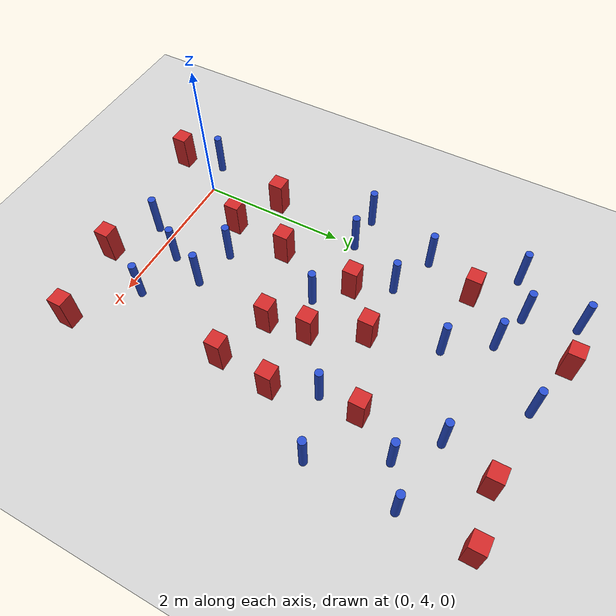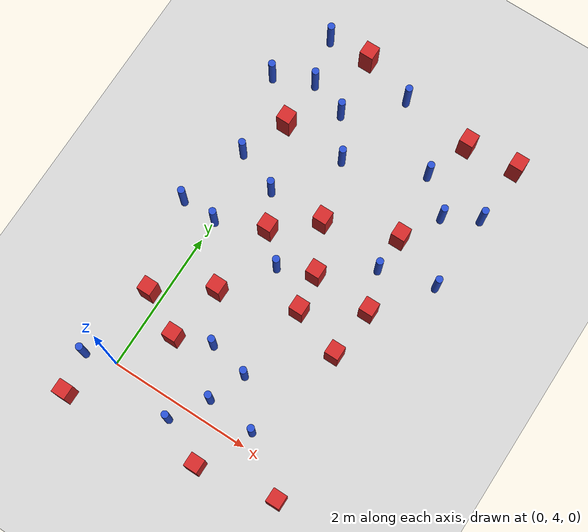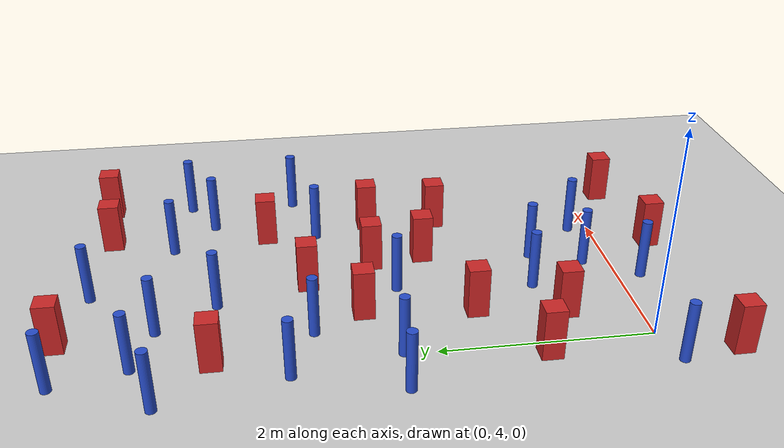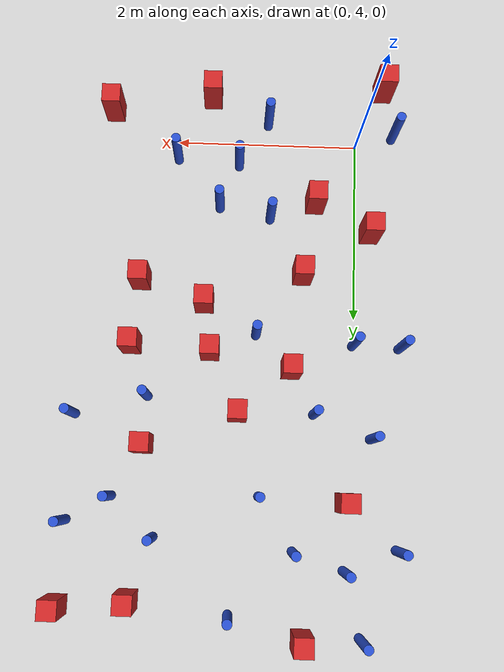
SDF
<sdf version="1.6">
 <world name="default">
  <model name="ground_plane">
   <static>1</static>
   <link name="link">
    <collision name="collision">
     <geometry><plane><normal>0 0 1</normal><size>100 100</size></plane></geometry>
     <surface><friction><ode><mu>100</mu><mu2>50</mu2></ode></friction></surface>
    </collision>
    <visual name="visual">
     <cast_shadows>0</cast_shadows>
     <geometry><plane><normal>0 0 1</normal><size>100 100</size></plane></geometry>
     <material>
      <ambient>1.0 1.0 1.0 1.0</ambient>
      <diffuse>0.8 0.8 0.8 1.0</diffuse>
      <specular>0.01 0.01 0.01 1.000000</specular>
     </material>
    </visual>
   </link>
  </model>
  <model name="pole_obstacle2">
   <static>true</static>
   <pose>1.06586460328 6.21019038955 7.38925637345e-09 -8.47170692799e-08 1.24976765033e-08 -1.74513093018e-07</pose>
   <link name="link">
    <pose>0 0 0.3 0 -0 0</pose>
    <inertial>
     <mass>1</mass>
     <inertia><ixx>0.145833</ixx><ixy>0</ixy><ixz>0</ixz><iyy>0.145833</iyy><iyz>0</iyz><izz>0.125</izz></inertia>
    </inertial>
    <collision name="collision">
     <geometry><cylinder><radius>0.05</radius><length>.6</length></cylinder></geometry>
    </collision>
    <visual name="visual">
     <geometry><cylinder><radius>0.05</radius><length>.6</length></cylinder></geometry>
     <material>
      <script><name>Gazebo/Blue</name><uri>file://media/materials/scripts/gazebo.material</uri></script>
     </material>
    </visual>
   </link>
  </model>
  <model name="pole_obstacle9">
   <static>true</static>
   <pose>2.97873358199 7.12761243668 7.38925637345e-09 -8.47170692798e-08 1.24976765033e-08 -1.74513093019e-07</pose>
   <link name="link">
    <pose>0 0 0.3 0 -0 0</pose>
    <inertial>
     <mass>1</mass>
     <inertia><ixx>0.145833</ixx><ixy>0</ixy><ixz>0</ixz><iyy>0.145833</iyy><iyz>0</iyz><izz>0.125</izz></inertia>
    </inertial>
    <collision name="collision">
     <geometry><cylinder><radius>0.05</radius><length>.6</length></cylinder></geometry>
    </collision>
    <visual name="visual">
     <geometry><cylinder><radius>0.05</radius><length>.6</length></cylinder></geometry>
     <material>
      <script><name>Gazebo/Blue</name><uri>file://media/materials/scripts/gazebo.material</uri></script>
     </material>
    </visual>
   </link>
  </model>
  <model name="pole_obstacle10">
   <static>true</static>
   <pose>0.944333623494 4.88567768252 7.38925637345e-09 -8.471706928e-08 1.24976765086e-08 -1.74513093015e-07</pose>
   <link name="link">
    <pose>0 0 0.3 0 -0 0</pose>
    <inertial>
     <mass>1</mass>
     <inertia><ixx>0.145833</ixx><ixy>0</ixy><ixz>0</ixz><iyy>0.145833</iyy><iyz>0</iyz><izz>0.125</izz></inertia>
    </inertial>
    <collision name="collision">
     <geometry><cylinder><radius>0.05</radius><length>.6</length></cylinder></geometry>
    </collision>
    <visual name="visual">
     <geometry><cylinder><radius>0.05</radius><length>.6</length></cylinder></geometry>
     <material>
      <script><name>Gazebo/Blue</name><uri>file://media/materials/scripts/gazebo.material</uri></script>
     </material>
    </visual>
   </link>
  </model>
  <model name="square_post_obstacle26">
   <static>true</static>
   <pose>3.03407934263 9.09152359974 1.91545236811e-07 -7.35059704564e-06 1.12565212e-07 2.39332434364e-05</pose>
   <link name="link">
    <pose>0 0 0.25 0 -0 0</pose>
    <inertial>
     <mass>100</mass>
     <inertia>
      <ixx>0.166667</ixx>
      <ixy>0</ixy>
      <ixz>0</ixz>
      <iyy>0.166667</iyy>
      <iyz>0</iyz>
      <izz>0.166667</izz>
     </inertia>
    </inertial>
    <collision name="collision"><geometry><box><size>.2 .2 .5</size></box></geometry></collision>
    <visual name="visual">
     <geometry><box><size>.2 .2 .5</size></box></geometry>
     <material>
      <script><name>Gazebo/Red</name><uri>file://media/materials/scripts/gazebo.material</uri></script>
     </material>
    </visual>
   </link>
  </model>
  <model name="pole_obstacle18">
   <static>true</static>
   <pose>0.428044369106 7.05701752918 7.38925637345e-09 -8.471706928e-08 1.24976765079e-08 -1.74513093015e-07</pose>
   <link name="link">
    <pose>0 0 0.3 0 -0 0</pose>
    <inertial>
     <mass>1</mass>
     <inertia><ixx>0.145833</ixx><ixy>0</ixy><ixz>0</ixz><iyy>0.145833</iyy><iyz>0</iyz><izz>0.125</izz></inertia>
    </inertial>
    <collision name="collision">
     <geometry><cylinder><radius>0.05</radius><length>.6</length></cylinder></geometry>
    </collision>
    <visual name="visual">
     <geometry><cylinder><radius>0.05</radius><length>.6</length></cylinder></geometry>
     <material>
      <script><name>Gazebo/Blue</name><uri>file://media/materials/scripts/gazebo.material</uri></script>
     </material>
    </visual>
   </link>
  </model>
  <model name="pole_obstacle20">
   <static>true</static>
   <pose>-0.183347849124 7.29966373755 7.38925637345e-09 -8.47170692799e-08 1.24976765068e-08 -1.74513093018e-07</pose>
   <link name="link">
    <pose>0 0 0.3 0 -0 0</pose>
    <inertial>
     <mass>1</mass>
     <inertia><ixx>0.145833</ixx><ixy>0</ixy><ixz>0</ixz><iyy>0.145833</iyy><iyz>0</iyz><izz>0.125</izz></inertia>
    </inertial>
    <collision name="collision">
     <geometry><cylinder><radius>0.05</radius><length>.6</length></cylinder></geometry>
    </collision>
    <visual name="visual">
     <geometry><cylinder><radius>0.05</radius><length>.6</length></cylinder></geometry>
     <material>
      <script><name>Gazebo/Blue</name><uri>file://media/materials/scripts/gazebo.material</uri></script>
     </material>
    </visual>
   </link>
  </model>
  <model name="square_post_obstacle34">
   <static>true</static>
   <pose>1.2423792632 7.06311561988 1.91545236811e-07 -7.35059704564e-06 1.12565212e-07 2.39332434364e-05</pose>
   <link name="link">
    <pose>0 0 0.25 0 -0 0</pose>
    <inertial>
     <mass>100</mass>
     <inertia>
      <ixx>0.166667</ixx>
      <ixy>0</ixy>
      <ixz>0</ixz>
      <iyy>0.166667</iyy>
      <iyz>0</iyz>
      <izz>0.166667</izz>
     </inertia>
    </inertial>
    <collision name="collision"><geometry><box><size>.2 .2 .5</size></box></geometry></collision>
    <visual name="visual">
     <geometry><box><size>.2 .2 .5</size></box></geometry>
     <material>
      <script><name>Gazebo/Red</name><uri>file://media/materials/scripts/gazebo.material</uri></script>
     </material>
    </visual>
   </link>
  </model>
  <model name="square_post_obstacle38">
   <static>true</static>
   <pose>2.73106794108 3.6618890365 1.91545236811e-07 -7.35059704564e-06 1.12565212e-07 2.39332434364e-05</pose>
   <link name="link">
    <pose>0 0 0.25 0 -0 0</pose>
    <inertial>
     <mass>100</mass>
     <inertia>
      <ixx>0.166667</ixx>
      <ixy>0</ixy>
      <ixz>0</ixz>
      <iyy>0.166667</iyy>
      <iyz>0</iyz>
      <izz>0.166667</izz>
     </inertia>
    </inertial>
    <collision name="collision"><geometry><box><size>.2 .2 .5</size></box></geometry></collision>
    <visual name="visual">
     <geometry><box><size>.2 .2 .5</size></box></geometry>
     <material>
      <script><name>Gazebo/Red</name><uri>file://media/materials/scripts/gazebo.material</uri></script>
     </material>
    </visual>
   </link>
  </model>
  <model name="pole_obstacle39">
   <static>true</static>
   <pose>0.626349549061 8.48914314361 7.38925637345e-09 -8.47170692797e-08 1.249767648e-08 -1.74513093032e-07</pose>
   <link name="link">
    <pose>0 0 0.3 0 -0 0</pose>
    <inertial>
     <mass>1</mass>
     <inertia><ixx>0.145833</ixx><ixy>0</ixy><ixz>0</ixz><iyy>0.145833</iyy><iyz>0</iyz><izz>0.125</izz></inertia>
    </inertial>
    <collision name="collision">
     <geometry><cylinder><radius>0.05</radius><length>.6</length></cylinder></geometry>
    </collision>
    <visual name="visual">
     <geometry><cylinder><radius>0.05</radius><length>.6</length></cylinder></geometry>
     <material>
      <script><name>Gazebo/Blue</name><uri>file://media/materials/scripts/gazebo.material</uri></script>
     </material>
    </visual>
   </link>
  </model>
  <model name="pole_obstacle42">
   <static>true</static>
   <pose>3.00503990446 8.23887131687 7.38925637345e-09 -8.47170692793e-08 1.24976764408e-08 -1.74513093041e-07</pose>
   <link name="link">
    <pose>0 0 0.3 0 -0 0</pose>
    <inertial>
     <mass>1</mass>
     <inertia><ixx>0.145833</ixx><ixy>0</ixy><ixz>0</ixz><iyy>0.145833</iyy><iyz>0</iyz><izz>0.125</izz></inertia>
    </inertial>
    <collision name="collision">
     <geometry><cylinder><radius>0.05</radius><length>.6</length></cylinder></geometry>
    </collision>
    <visual name="visual">
     <geometry><cylinder><radius>0.05</radius><length>.6</length></cylinder></geometry>
     <material>
      <script><name>Gazebo/Blue</name><uri>file://media/materials/scripts/gazebo.material</uri></script>
     </material>
    </visual>
   </link>
  </model>
  <model name="pole_obstacle46">
   <static>true</static>
   <pose>0.991937153047 7.93670062329 7.38925637345e-09 -8.471706928e-08 1.24976765144e-08 -1.74513093012e-07</pose>
   <link name="link">
    <pose>0 0 0.3 0 -0 0</pose>
    <inertial>
     <mass>1</mass>
     <inertia><ixx>0.145833</ixx><ixy>0</ixy><ixz>0</ixz><iyy>0.145833</iyy><iyz>0</iyz><izz>0.125</izz></inertia>
    </inertial>
    <collision name="collision">
     <geometry><cylinder><radius>0.05</radius><length>.6</length></cylinder></geometry>
    </collision>
    <visual name="visual">
     <geometry><cylinder><radius>0.05</radius><length>.6</length></cylinder></geometry>
     <material>
      <script><name>Gazebo/Blue</name><uri>file://media/materials/scripts/gazebo.material</uri></script>
     </material>
    </visual>
   </link>
  </model>
  <model name="square_post_obstacle49">
   <static>true</static>
   <pose>2.4050298605 6.35766472136 1.91545236811e-07 -7.35059704564e-06 1.12565212e-07 2.39332434364e-05</pose>
   <link name="link">
    <pose>0 0 0.25 0 -0 0</pose>
    <inertial>
     <mass>100</mass>
     <inertia>
      <ixx>0.166667</ixx>
      <ixy>0</ixy>
      <ixz>0</ixz>
      <iyy>0.166667</iyy>
      <iyz>0</iyz>
      <izz>0.166667</izz>
     </inertia>
    </inertial>
    <collision name="collision"><geometry><box><size>.2 .2 .5</size></box></geometry></collision>
    <visual name="visual">
     <geometry><box><size>.2 .2 .5</size></box></geometry>
     <material>
      <script><name>Gazebo/Red</name><uri>file://media/materials/scripts/gazebo.material</uri></script>
     </material>
    </visual>
   </link>
  </model>
  <model name="pole_obstacle52">
   <static>true</static>
   <pose>2.08269005218 8.38852144401 7.38925637345e-09 -8.47170692793e-08 1.24976764408e-08 -1.74513093041e-07</pose>
   <link name="link">
    <pose>0 0 0.3 0 -0 0</pose>
    <inertial>
     <mass>1</mass>
     <inertia><ixx>0.145833</ixx><ixy>0</ixy><ixz>0</ixz><iyy>0.145833</iyy><iyz>0</iyz><izz>0.125</izz></inertia>
    </inertial>
    <collision name="collision">
     <geometry><cylinder><radius>0.05</radius><length>.6</length></cylinder></geometry>
    </collision>
    <visual name="visual">
     <geometry><cylinder><radius>0.05</radius><length>.6</length></cylinder></geometry>
     <material>
      <script><name>Gazebo/Blue</name><uri>file://media/materials/scripts/gazebo.material</uri></script>
     </material>
    </visual>
   </link>
  </model>
  <model name="pole_obstacle71">
   <static>true</static>
   <pose>-0.488612107493 6.31344434281 7.38925637345e-09 -8.471706928e-08 1.24976765062e-08 -1.74513093016e-07</pose>
   <link name="link">
    <pose>0 0 0.3 0 -0 0</pose>
    <inertial>
     <mass>1</mass>
     <inertia><ixx>0.145833</ixx><ixy>0</ixy><ixz>0</ixz><iyy>0.145833</iyy><iyz>0</iyz><izz>0.125</izz></inertia>
    </inertial>
    <collision name="collision">
     <geometry><cylinder><radius>0.05</radius><length>.6</length></cylinder></geometry>
    </collision>
    <visual name="visual">
     <geometry><cylinder><radius>0.05</radius><length>.6</length></cylinder></geometry>
     <material>
      <script><name>Gazebo/Blue</name><uri>file://media/materials/scripts/gazebo.material</uri></script>
     </material>
    </visual>
   </link>
  </model>
  <model name="square_post_obstacle80">
   <static>true</static>
   <pose>0.0815733638794 7.97062195004 1.91545236811e-07 -7.35059704564e-06 1.12565212e-07 2.39332434364e-05</pose>
   <link name="link">
    <pose>0 0 0.25 0 -0 0</pose>
    <inertial>
     <mass>100</mass>
     <inertia>
      <ixx>0.166667</ixx>
      <ixy>0</ixy>
      <ixz>0</ixz>
      <iyy>0.166667</iyy>
      <iyz>0</iyz>
      <izz>0.166667</izz>
     </inertia>
    </inertial>
    <collision name="collision"><geometry><box><size>.2 .2 .5</size></box></geometry></collision>
    <visual name="visual">
     <geometry><box><size>.2 .2 .5</size></box></geometry>
     <material>
      <script><name>Gazebo/Red</name><uri>file://media/materials/scripts/gazebo.material</uri></script>
     </material>
    </visual>
   </link>
  </model>
  <model name="pole_obstacle93">
   <static>true</static>
   <pose>0.0936364248604 8.6671400511 7.38925637345e-09 -8.47170692797e-08 1.24976764742e-08 -1.74513093035e-07</pose>
   <link name="link">
    <pose>0 0 0.3 0 -0 0</pose>
    <inertial>
     <mass>1</mass>
     <inertia><ixx>0.145833</ixx><ixy>0</ixy><ixz>0</ixz><iyy>0.145833</iyy><iyz>0</iyz><izz>0.125</izz></inertia>
    </inertial>
    <collision name="collision">
     <geometry><cylinder><radius>0.05</radius><length>.6</length></cylinder></geometry>
    </collision>
    <visual name="visual">
     <geometry><cylinder><radius>0.05</radius><length>.6</length></cylinder></geometry>
     <material>
      <script><name>Gazebo/Blue</name><uri>file://media/materials/scripts/gazebo.material</uri></script>
     </material>
    </visual>
   </link>
  </model>
  <model name="square_post_obstacle85">
   <static>true</static>
   <pose>0.525322281253 9.35652579422 1.91545236811e-07 -7.35059704564e-06 1.12565212e-07 2.39332434364e-05</pose>
   <link name="link">
    <pose>0 0 0.25 0 -0 0</pose>
    <inertial>
     <mass>100</mass>
     <inertia>
      <ixx>0.166667</ixx>
      <ixy>0</ixy>
      <ixz>0</ixz>
      <iyy>0.166667</iyy>
      <iyz>0</iyz>
      <izz>0.166667</izz>
     </inertia>
    </inertial>
    <collision name="collision"><geometry><box><size>.2 .2 .5</size></box></geometry></collision>
    <visual name="visual">
     <geometry><box><size>.2 .2 .5</size></box></geometry>
     <material>
      <script><name>Gazebo/Red</name><uri>file://media/materials/scripts/gazebo.material</uri></script>
     </material>
    </visual>
   </link>
  </model>
  <model name="square_post_obstacle93">
   <static>true</static>
   <pose>0.685206457645 6.5806761915 1.91545236811e-07 -7.35059704564e-06 1.12565212e-07 2.39332434364e-05</pose>
   <link name="link">
    <pose>0 0 0.25 0 -0 0</pose>
    <inertial>
     <mass>100</mass>
     <inertia>
      <ixx>0.166667</ixx>
      <ixy>0</ixy>
      <ixz>0</ixz>
      <iyy>0.166667</iyy>
      <iyz>0</iyz>
      <izz>0.166667</izz>
     </inertia>
    </inertial>
    <collision name="collision"><geometry><box><size>.2 .2 .5</size></box></geometry></collision>
    <visual name="visual">
     <geometry><box><size>.2 .2 .5</size></box></geometry>
     <material>
      <script><name>Gazebo/Red</name><uri>file://media/materials/scripts/gazebo.material</uri></script>
     </material>
    </visual>
   </link>
  </model>
  <model name="square_post_obstacle98">
   <static>true</static>
   <pose>-0.15522373049 5.02814463486 1.91545236811e-07 -7.35059704564e-06 1.12565212e-07 2.39332434364e-05</pose>
   <link name="link">
    <pose>0 0 0.25 0 -0 0</pose>
    <inertial>
     <mass>100</mass>
     <inertia>
      <ixx>0.166667</ixx>
      <ixy>0</ixy>
      <ixz>0</ixz>
      <iyy>0.166667</iyy>
      <iyz>0</iyz>
      <izz>0.166667</izz>
     </inertia>
    </inertial>
    <collision name="collision"><geometry><box><size>.2 .2 .5</size></box></geometry></collision>
    <visual name="visual">
     <geometry><box><size>.2 .2 .5</size></box></geometry>
     <material>
      <script><name>Gazebo/Red</name><uri>file://media/materials/scripts/gazebo.material</uri></script>
     </material>
    </visual>
   </link>
  </model>
  <model name="pole_obstacle132">
   <static>true</static>
   <pose>2.5421407417 7.97824844652 7.38925637345e-09 -8.47170692799e-08 1.24976765031e-08 -1.7451309302e-07</pose>
   <link name="link">
    <pose>0 0 0.3 0 -0 0</pose>
    <inertial>
     <mass>1</mass>
     <inertia><ixx>0.145833</ixx><ixy>0</ixy><ixz>0</ixz><iyy>0.145833</iyy><iyz>0</iyz><izz>0.125</izz></inertia>
    </inertial>
    <collision name="collision">
     <geometry><cylinder><radius>0.05</radius><length>.6</length></cylinder></geometry>
    </collision>
    <visual name="visual">
     <geometry><cylinder><radius>0.05</radius><length>.6</length></cylinder></geometry>
     <material>
      <script><name>Gazebo/Blue</name><uri>file://media/materials/scripts/gazebo.material</uri></script>
     </material>
    </visual>
   </link>
  </model>
  <model name="square_post_obstacle117">
   <static>true</static>
   <pose>2.33819778625 5.6386660418 1.91545236811e-07 -7.35059704564e-06 1.12565212e-07 2.39332434364e-05</pose>
   <link name="link">
    <pose>0 0 0.25 0 -0 0</pose>
    <inertial>
     <mass>100</mass>
     <inertia>
      <ixx>0.166667</ixx>
      <ixy>0</ixy>
      <ixz>0</ixz>
      <iyy>0.166667</iyy>
      <iyz>0</iyz>
      <izz>0.166667</izz>
     </inertia>
    </inertial>
    <collision name="collision"><geometry><box><size>.2 .2 .5</size></box></geometry></collision>
    <visual name="visual">
     <geometry><box><size>.2 .2 .5</size></box></geometry>
     <material>
      <script><name>Gazebo/Red</name><uri>file://media/materials/scripts/gazebo.material</uri></script>
     </material>
    </visual>
   </link>
  </model>
  <model name="square_post_obstacle123">
   <static>true</static>
   <pose>0.581401344451 5.52908161055 1.91545236811e-07 -7.35059704564e-06 1.12565212e-07 2.39332434364e-05</pose>
   <link name="link">
    <pose>0 0 0.25 0 -0 0</pose>
    <inertial>
     <mass>100</mass>
     <inertia>
      <ixx>0.166667</ixx>
      <ixy>0</ixy>
      <ixz>0</ixz>
      <iyy>0.166667</iyy>
      <iyz>0</iyz>
      <izz>0.166667</izz>
     </inertia>
    </inertial>
    <collision name="collision"><geometry><box><size>.2 .2 .5</size></box></geometry></collision>
    <visual name="visual">
     <geometry><box><size>.2 .2 .5</size></box></geometry>
     <material>
      <script><name>Gazebo/Red</name><uri>file://media/materials/scripts/gazebo.material</uri></script>
     </material>
    </visual>
   </link>
  </model>
  <model name="pole_obstacle141">
   <static>true</static>
   <pose>1.30706618312 4.26784318113 7.38925637345e-09 -8.47170692799e-08 1.24976765033e-08 -1.74513093018e-07</pose>
   <link name="link">
    <pose>0 0 0.3 0 -0 0</pose>
    <inertial>
     <mass>1</mass>
     <inertia><ixx>0.145833</ixx><ixy>0</ixy><ixz>0</ixz><iyy>0.145833</iyy><iyz>0</iyz><izz>0.125</izz></inertia>
    </inertial>
    <collision name="collision">
     <geometry><cylinder><radius>0.05</radius><length>.6</length></cylinder></geometry>
    </collision>
    <visual name="visual">
     <geometry><cylinder><radius>0.05</radius><length>.6</length></cylinder></geometry>
     <material>
      <script><name>Gazebo/Blue</name><uri>file://media/materials/scripts/gazebo.material</uri></script>
     </material>
    </visual>
   </link>
  </model>
  <model name="square_post_obstacle126">
   <static>true</static>
   <pose>2.30696308264 9.01777164207 1.91545236811e-07 -7.35059704564e-06 1.12565212e-07 2.39332434364e-05</pose>
   <link name="link">
    <pose>0 0 0.25 0 -0 0</pose>
    <inertial>
     <mass>100</mass>
     <inertia>
      <ixx>0.166667</ixx>
      <ixy>0</ixy>
      <ixz>0</ixz>
      <iyy>0.166667</iyy>
      <iyz>0</iyz>
      <izz>0.166667</izz>
     </inertia>
    </inertial>
    <collision name="collision"><geometry><box><size>.2 .2 .5</size></box></geometry></collision>
    <visual name="visual">
     <geometry><box><size>.2 .2 .5</size></box></geometry>
     <material>
      <script><name>Gazebo/Red</name><uri>file://media/materials/scripts/gazebo.material</uri></script>
     </material>
    </visual>
   </link>
  </model>
  <model name="pole_obstacle145">
   <static>true</static>
   <pose>-0.411148315705 3.88852994668 7.38925637345e-09 -8.471706928e-08 1.24976765084e-08 -1.74513093017e-07</pose>
   <link name="link">
    <pose>0 0 0.3 0 -0 0</pose>
    <inertial>
     <mass>1</mass>
     <inertia><ixx>0.145833</ixx><ixy>0</ixy><ixz>0</ixz><iyy>0.145833</iyy><iyz>0</iyz><izz>0.125</izz></inertia>
    </inertial>
    <collision name="collision">
     <geometry><cylinder><radius>0.05</radius><length>.6</length></cylinder></geometry>
    </collision>
    <visual name="visual">
     <geometry><cylinder><radius>0.05</radius><length>.6</length></cylinder></geometry>
     <material>
      <script><name>Gazebo/Blue</name><uri>file://media/materials/scripts/gazebo.material</uri></script>
     </material>
    </visual>
   </link>
  </model>
  <model name="pole_obstacle155">
   <static>true</static>
   <pose>0.990394251256 3.76680170456 7.38925637345e-09 -8.47170692799e-08 1.24976765046e-08 -1.74513093018e-07</pose>
   <link name="link">
    <pose>0 0 0.3 0 -0 0</pose>
    <inertial>
     <mass>1</mass>
     <inertia><ixx>0.145833</ixx><ixy>0</ixy><ixz>0</ixz><iyy>0.145833</iyy><iyz>0</iyz><izz>0.125</izz></inertia>
    </inertial>
    <collision name="collision">
     <geometry><cylinder><radius>0.05</radius><length>.6</length></cylinder></geometry>
    </collision>
    <visual name="visual">
     <geometry><cylinder><radius>0.05</radius><length>.6</length></cylinder></geometry>
     <material>
      <script><name>Gazebo/Blue</name><uri>file://media/materials/scripts/gazebo.material</uri></script>
     </material>
    </visual>
   </link>
  </model>
  <model name="square_post_obstacle155">
   <static>true</static>
   <pose>-0.3033704911 3.33153540826 1.91545236811e-07 -7.35059704564e-06 1.12565212e-07 2.39332434364e-05</pose>
   <link name="link">
    <pose>0 0 0.25 0 -0 0</pose>
    <inertial>
     <mass>100</mass>
     <inertia>
      <ixx>0.166667</ixx>
      <ixy>0</ixy>
      <ixz>0</ixz>
      <iyy>0.166667</iyy>
      <iyz>0</iyz>
      <izz>0.166667</izz>
     </inertia>
    </inertial>
    <collision name="collision"><geometry><box><size>.2 .2 .5</size></box></geometry></collision>
    <visual name="visual">
     <geometry><box><size>.2 .2 .5</size></box></geometry>
     <material>
      <script><name>Gazebo/Red</name><uri>file://media/materials/scripts/gazebo.material</uri></script>
     </material>
    </visual>
   </link>
  </model>
  <model name="pole_obstacle178">
   <static>true</static>
   <pose>-0.0786809139384 9.32939792244 7.38925637345e-09 -8.47170692796e-08 1.24976764728e-08 -1.74513093036e-07</pose>
   <link name="link">
    <pose>0 0 0.3 0 -0 0</pose>
    <inertial>
     <mass>1</mass>
     <inertia><ixx>0.145833</ixx><ixy>0</ixy><ixz>0</ixz><iyy>0.145833</iyy><iyz>0</iyz><izz>0.125</izz></inertia>
    </inertial>
    <collision name="collision">
     <geometry><cylinder><radius>0.05</radius><length>.6</length></cylinder></geometry>
    </collision>
    <visual name="visual">
     <geometry><cylinder><radius>0.05</radius><length>.6</length></cylinder></geometry>
     <material>
      <script><name>Gazebo/Blue</name><uri>file://media/materials/scripts/gazebo.material</uri></script>
     </material>
    </visual>
   </link>
  </model>
  <model name="pole_obstacle187">
   <static>true</static>
   <pose>1.27605580764 9.14319736148 7.38925637345e-09 -8.47170692798e-08 1.24976764881e-08 -1.74513093027e-07</pose>
   <link name="link">
    <pose>0 0 0.3 0 -0 0</pose>
    <inertial>
     <mass>1</mass>
     <inertia><ixx>0.145833</ixx><ixy>0</ixy><ixz>0</ixz><iyy>0.145833</iyy><iyz>0</iyz><izz>0.125</izz></inertia>
    </inertial>
    <collision name="collision">
     <geometry><cylinder><radius>0.05</radius><length>.6</length></cylinder></geometry>
    </collision>
    <visual name="visual">
     <geometry><cylinder><radius>0.05</radius><length>.6</length></cylinder></geometry>
     <material>
      <script><name>Gazebo/Blue</name><uri>file://media/materials/scripts/gazebo.material</uri></script>
     </material>
    </visual>
   </link>
  </model>
  <model name="square_post_obstacle185">
   <static>true</static>
   <pose>2.22547672574 7.42842193801 1.91545236811e-07 -7.35059704564e-06 1.12565212e-07 2.39332434364e-05</pose>
   <link name="link">
    <pose>0 0 0.25 0 -0 0</pose>
    <inertial>
     <mass>100</mass>
     <inertia>
      <ixx>0.166667</ixx>
      <ixy>0</ixy>
      <ixz>0</ixz>
      <iyy>0.166667</iyy>
      <iyz>0</iyz>
      <izz>0.166667</izz>
     </inertia>
    </inertial>
    <collision name="collision"><geometry><box><size>.2 .2 .5</size></box></geometry></collision>
    <visual name="visual">
     <geometry><box><size>.2 .2 .5</size></box></geometry>
     <material>
      <script><name>Gazebo/Red</name><uri>file://media/materials/scripts/gazebo.material</uri></script>
     </material>
    </visual>
   </link>
  </model>
  <model name="square_post_obstacle200">
   <static>true</static>
   <pose>1.63684411359 5.87849885885 1.91545236811e-07 -7.35059704564e-06 1.12565212e-07 2.39332434364e-05</pose>
   <link name="link">
    <pose>0 0 0.25 0 -0 0</pose>
    <inertial>
     <mass>100</mass>
     <inertia>
      <ixx>0.166667</ixx>
      <ixy>0</ixy>
      <ixz>0</ixz>
      <iyy>0.166667</iyy>
      <iyz>0</iyz>
      <izz>0.166667</izz>
     </inertia>
    </inertial>
    <collision name="collision"><geometry><box><size>.2 .2 .5</size></box></geometry></collision>
    <visual name="visual">
     <geometry><box><size>.2 .2 .5</size></box></geometry>
     <material>
      <script><name>Gazebo/Red</name><uri>file://media/materials/scripts/gazebo.material</uri></script>
     </material>
    </visual>
   </link>
  </model>
  <model name="square_post_obstacle201">
   <static>true</static>
   <pose>0.452163953887 4.70010150673 1.91545236811e-07 -7.35059704564e-06 1.12565212e-07 2.39332434364e-05</pose>
   <link name="link">
    <pose>0 0 0.25 0 -0 0</pose>
    <inertial>
     <mass>100</mass>
     <inertia>
      <ixx>0.166667</ixx>
      <ixy>0</ixy>
      <ixz>0</ixz>
      <iyy>0.166667</iyy>
      <iyz>0</iyz>
      <izz>0.166667</izz>
     </inertia>
    </inertial>
    <collision name="collision"><geometry><box><size>.2 .2 .5</size></box></geometry></collision>
    <visual name="visual">
     <geometry><box><size>.2 .2 .5</size></box></geometry>
     <material>
      <script><name>Gazebo/Red</name><uri>file://media/materials/scripts/gazebo.material</uri></script>
     </material>
    </visual>
   </link>
  </model>
  <model name="pole_obstacle211">
   <static>true</static>
   <pose>0.016244450239 6.29646315878 7.38925637345e-09 -8.471706928e-08 1.24976765087e-08 -1.74513093016e-07</pose>
   <link name="link">
    <pose>0 0 0.3 0 -0 0</pose>
    <inertial>
     <mass>1</mass>
     <inertia><ixx>0.145833</ixx><ixy>0</ixy><ixz>0</ixz><iyy>0.145833</iyy><iyz>0</iyz><izz>0.125</izz></inertia>
    </inertial>
    <collision name="collision">
     <geometry><cylinder><radius>0.05</radius><length>.6</length></cylinder></geometry>
    </collision>
    <visual name="visual">
     <geometry><cylinder><radius>0.05</radius><length>.6</length></cylinder></geometry>
     <material>
      <script><name>Gazebo/Blue</name><uri>file://media/materials/scripts/gazebo.material</uri></script>
     </material>
    </visual>
   </link>
  </model>
  <model name="square_post_obstacle202">
   <static>true</static>
   <pose>1.55453273505 6.40504866956 1.91545236811e-07 -7.35059704564e-06 1.12565212e-07 2.39332434364e-05</pose>
   <link name="link">
    <pose>0 0 0.25 0 -0 0</pose>
    <inertial>
     <mass>100</mass>
     <inertia>
      <ixx>0.166667</ixx>
      <ixy>0</ixy>
      <ixz>0</ixz>
      <iyy>0.166667</iyy>
      <iyz>0</iyz>
      <izz>0.166667</izz>
     </inertia>
    </inertial>
    <collision name="collision"><geometry><box><size>.2 .2 .5</size></box></geometry></collision>
    <visual name="visual">
     <geometry><box><size>.2 .2 .5</size></box></geometry>
     <material>
      <script><name>Gazebo/Red</name><uri>file://media/materials/scripts/gazebo.material</uri></script>
     </material>
    </visual>
   </link>
  </model>
  <model name="square_post_obstacle206">
   <static>true</static>
   <pose>1.62541297593 3.47069707608 1.91545236811e-07 -7.35059704564e-06 1.12565212e-07 2.39332434364e-05</pose>
   <link name="link">
    <pose>0 0 0.25 0 -0 0</pose>
    <inertial>
     <mass>100</mass>
     <inertia>
      <ixx>0.166667</ixx>
      <ixy>0</ixy>
      <ixz>0</ixz>
      <iyy>0.166667</iyy>
      <iyz>0</iyz>
      <izz>0.166667</izz>
     </inertia>
    </inertial>
    <collision name="collision"><geometry><box><size>.2 .2 .5</size></box></geometry></collision>
    <visual name="visual">
     <geometry><box><size>.2 .2 .5</size></box></geometry>
     <material>
      <script><name>Gazebo/Red</name><uri>file://media/materials/scripts/gazebo.material</uri></script>
     </material>
    </visual>
   </link>
  </model>
  <model name="pole_obstacle226">
   <static>true</static>
   <pose>1.99225000957 4.20967002078 7.38925637345e-09 -8.471706928e-08 1.24976765044e-08 -1.74513093018e-07</pose>
   <link name="link">
    <pose>0 0 0.3 0 -0 0</pose>
    <inertial>
     <mass>1</mass>
     <inertia><ixx>0.145833</ixx><ixy>0</ixy><ixz>0</ixz><iyy>0.145833</iyy><iyz>0</iyz><izz>0.125</izz></inertia>
    </inertial>
    <collision name="collision">
     <geometry><cylinder><radius>0.05</radius><length>.6</length></cylinder></geometry>
    </collision>
    <visual name="visual">
     <geometry><cylinder><radius>0.05</radius><length>.6</length></cylinder></geometry>
     <material>
      <script><name>Gazebo/Blue</name><uri>file://media/materials/scripts/gazebo.material</uri></script>
     </material>
    </visual>
   </link>
  </model>
  <model name="pole_obstacle232">
   <static>true</static>
   <pose>2.21012000957 6.91585002078 7.38925637345e-09 -8.47170692798e-08 1.24976765033e-08 -1.74513093019e-07</pose>
   <link name="link">
    <pose>0 0 0.3 0 -0 0</pose>
    <inertial>
     <mass>1</mass>
     <inertia><ixx>0.145833</ixx><ixy>0</ixy><ixz>0</ixz><iyy>0.145833</iyy><iyz>0</iyz><izz>0.125</izz></inertia>
    </inertial>
    <collision name="collision">
     <geometry><cylinder><radius>0.05</radius><length>.6</length></cylinder></geometry>
    </collision>
    <visual name="visual">
     <geometry><cylinder><radius>0.05</radius><length>.6</length></cylinder></geometry>
     <material>
      <script><name>Gazebo/Blue</name><uri>file://media/materials/scripts/gazebo.material</uri></script>
     </material>
    </visual>
   </link>
  </model>
  <model name="pole_obstacle234">
   <static>true</static>
   <pose>-0.458327990425 8.44362002078 7.38925637345e-09 -8.47170692796e-08 1.24976764744e-08 -1.74513093036e-07</pose>
   <link name="link">
    <pose>0 0 0.3 0 -0 0</pose>
    <inertial>
     <mass>1</mass>
     <inertia><ixx>0.145833</ixx><ixy>0</ixy><ixz>0</ixz><iyy>0.145833</iyy><iyz>0</iyz><izz>0.125</izz></inertia>
    </inertial>
    <collision name="collision">
     <geometry><cylinder><radius>0.05</radius><length>.6</length></cylinder></geometry>
    </collision>
    <visual name="visual">
     <geometry><cylinder><radius>0.05</radius><length>.6</length></cylinder></geometry>
     <material>
      <script><name>Gazebo/Blue</name><uri>file://media/materials/scripts/gazebo.material</uri></script>
     </material>
    </visual>
   </link>
  </model>
  <model name="pole_obstacle241">
   <static>true</static>
   <pose>1.50694000957 4.77040002078 7.38925637345e-09 -8.47170692799e-08 1.24976765052e-08 -1.74513093018e-07</pose>
   <link name="link">
    <pose>0 0 0.3 0 -0 0</pose>
    <inertial>
     <mass>1</mass>
     <inertia><ixx>0.145833</ixx><ixy>0</ixy><ixz>0</ixz><iyy>0.145833</iyy><iyz>0</iyz><izz>0.125</izz></inertia>
    </inertial>
    <collision name="collision">
     <geometry><cylinder><radius>0.05</radius><length>.6</length></cylinder></geometry>
    </collision>
    <visual name="visual">
     <geometry><cylinder><radius>0.05</radius><length>.6</length></cylinder></geometry>
     <material>
      <script><name>Gazebo/Blue</name><uri>file://media/materials/scripts/gazebo.material</uri></script>
     </material>
    </visual>
   </link>
  </model>
 </world>
</sdf>
